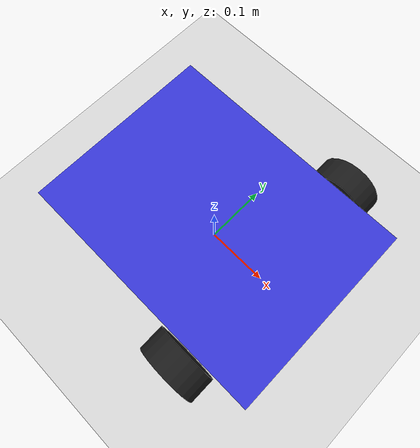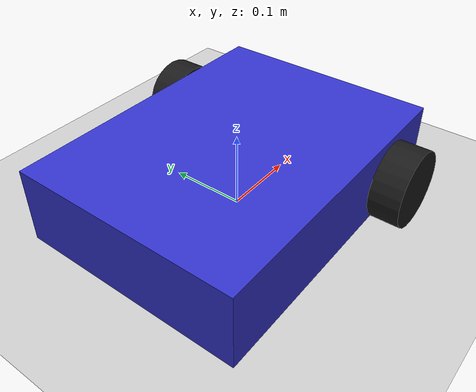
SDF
<?xml version="1.0" ?>
<sdf version="1.8">
  <world name="diff_drive_world">
    <!-- 물리 설정 -->
    <physics name="1ms" type="ode">
      <max_step_size>0.001</max_step_size>
      <real_time_factor>1.0</real_time_factor>
      <real_time_update_rate>1000</real_time_update_rate>
    </physics>

    <!-- 기본 플러그인 -->
    <plugin
      filename="libignition-gazebo-physics-system.so"
      name="ignition::gazebo::systems::Physics">
    </plugin>
    <plugin
      filename="libignition-gazebo-user-commands-system.so"
      name="ignition::gazebo::systems::UserCommands">
    </plugin>
    <plugin
      filename="libignition-gazebo-scene-broadcaster-system.so"
      name="ignition::gazebo::systems::SceneBroadcaster">
    </plugin>

    <!-- 키보드로 로봇 이동하기 위한 TriggeredPublisher 플러그인 -->
    <!-- 전진 (위 화살표) -->
    <plugin filename="libignition-gazebo-triggered-publisher-system.so"
            name="ignition::gazebo::systems::TriggeredPublisher">
        <input type="ignition.msgs.Int32" topic="/keyboard/keypress">
            <match field="data">16777235</match>
        </input>
        <output type="ignition.msgs.Twist" topic="/cmd_vel">
            linear: {x: 0.5}, angular: {z: 0.0}
        </output>
    </plugin>

    <!-- 후진 (아래 화살표) -->
    <plugin filename="libignition-gazebo-triggered-publisher-system.so"
            name="ignition::gazebo::systems::TriggeredPublisher">
        <input type="ignition.msgs.Int32" topic="/keyboard/keypress">
            <match field="data">16777237</match>
        </input>
        <output type="ignition.msgs.Twist" topic="/cmd_vel">
            linear: {x: -0.5}, angular: {z: 0.0}
        </output>
    </plugin>

    <!-- 좌회전 (왼쪽 화살표) -->
    <plugin filename="libignition-gazebo-triggered-publisher-system.so"
            name="ignition::gazebo::systems::TriggeredPublisher">
        <input type="ignition.msgs.Int32" topic="/keyboard/keypress">
            <match field="data">16777234</match>
        </input>
        <output type="ignition.msgs.Twist" topic="/cmd_vel">
            linear: {x: 0.0}, angular: {z: 0.5}
        </output>
    </plugin>

    <!-- 우회전 (오른쪽 화살표) -->
    <plugin filename="libignition-gazebo-triggered-publisher-system.so"
            name="ignition::gazebo::systems::TriggeredPublisher">
        <input type="ignition.msgs.Int32" topic="/keyboard/keypress">
            <match field="data">16777236</match>
        </input>
        <output type="ignition.msgs.Twist" topic="/cmd_vel">
            linear: {x: 0.0}, angular: {z: -0.5}
        </output>
    </plugin>

    <!-- 정지 (스페이스바) -->
    <plugin filename="libignition-gazebo-triggered-publisher-system.so"
            name="ignition::gazebo::systems::TriggeredPublisher">
        <input type="ignition.msgs.Int32" topic="/keyboard/keypress">
            <match field="data">32</match>
        </input>
        <output type="ignition.msgs.Twist" topic="/cmd_vel">
            linear: {x: 0.0}, angular: {z: 0.0}
        </output>
    </plugin>

    <!-- 조명 -->
    <light type="directional" name="sun">
      <cast_shadows>true</cast_shadows>
      <pose>0 0 10 0 0 0</pose>
      <diffuse>0.8 0.8 0.8 1</diffuse>
      <specular>0.2 0.2 0.2 1</specular>
      <direction>-0.5 0.1 -0.9</direction>
    </light>

    <!-- 지면 모델 포함 -->
    <include>
      <uri>model://chapter5/models/ground_plane</uri>
    </include>

    <!-- 로봇 모델 포함 -->
    <include>
      <uri>model://chapter5/models/diff_drive_robot</uri>
      <pose>0 0 0 0 0 0</pose>
    </include>

    <!-- GUI 설정 -->
    <gui fullscreen="0">
      <plugin filename="MinimalScene" name="3D View">
        <gz-gui>
          <title>3D View</title>
          <property type="bool" key="showTitleBar">false</property>
          <property type="string" key="state">docked</property>
        </gz-gui>
        <engine>ogre2</engine>
        <scene>scene</scene>
        <ambient_light>0.4 0.4 0.4</ambient_light>
        <background_color>0.8 0.8 0.8</background_color>
        <camera_pose>-6 0 6 0 0.5 0</camera_pose>
        <camera_clip>
          <near>0.25</near>
          <far>25000</far>
        </camera_clip>
      </plugin>
      <plugin filename="GzSceneManager" name="Scene Manager">
        <gz-gui>
          <property key="resizable" type="bool">false</property>
          <property key="showTitleBar" type="bool">false</property>
        </gz-gui>
      </plugin>
      <plugin filename="KeyPublisher" name="Key Publisher">
        <gz-gui>
          <anchors target="GzSceneManager">
            <line own="right" target="right"/>
            <line own="top" target="top"/>
          </anchors>
          <property key="showTitleBar" type="bool">false</property>
        </gz-gui>
      </plugin>
      <!-- Teleop GUI 플러그인 추가 -->
      <plugin filename="Teleop" name="Teleop">
        <gz-gui>
          <property key="showTitleBar" type="bool">false</property>
          <property key="resizable" type="bool">true</property>
          <property key="width" type="double">400</property>
          <property key="height" type="double">400</property>
          <property key="state" type="string">docked</property>
        </gz-gui>
        <topic>/cmd_vel</topic>
        <max_linear>1.0</max_linear>
        <max_angular>0.5</max_angular>
      </plugin>
    </gui>
  </world>
</sdf>

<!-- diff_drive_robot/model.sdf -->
<sdf version="1.6">
  <model name="diff_drive_robot">
    <!-- 로봇 본체 -->
    <link name="chassis">
      <pose>0 0 0.05 0 0 0</pose>
      <inertial>
        <mass>5.0</mass>
        <inertia>
          <ixx>0.0417</ixx>
          <iyy>0.0417</iyy>
          <izz>0.0833</izz>
          <ixy>0</ixy>
          <ixz>0</ixz>
          <iyz>0</iyz>
        </inertia>
      </inertial>
      <collision name="collision">
        <geometry>
          <box>
            <size>0.4 0.3 0.1</size>
          </box>
        </geometry>
      </collision>
      <visual name="visual">
        <geometry>
          <box>
            <size>0.4 0.3 0.1</size>
          </box>
        </geometry>
        <material>
          <ambient>0.2 0.2 0.8 1</ambient>
          <diffuse>0.2 0.2 0.8 1</diffuse>
          <specular>0.1 0.1 0.1 1</specular>
        </material>
      </visual>
    </link>

    <!-- 좌측 바퀴 -->
    <link name="left_wheel">
      <pose>0.1 0.175 0.05 -1.5707 0 0</pose>
      <inertial>
        <mass>1.0</mass>
        <inertia>
          <ixx>0.0029</ixx>
          <iyy>0.0029</iyy>
          <izz>0.0052</izz>
          <ixy>0</ixy>
          <ixz>0</ixz>
          <iyz>0</iyz>
        </inertia>
      </inertial>
      <collision name="collision">
        <geometry>
          <cylinder>
            <radius>0.05</radius>
            <length>0.04</length>
          </cylinder>
        </geometry>
      </collision>
      <visual name="visual">
        <geometry>
          <cylinder>
            <radius>0.05</radius>
            <length>0.04</length>
          </cylinder>
        </geometry>
        <material>
          <ambient>0.1 0.1 0.1 1</ambient>
          <diffuse>0.1 0.1 0.1 1</diffuse>
          <specular>0.1 0.1 0.1 1</specular>
        </material>
      </visual>
    </link>

    <!-- 우측 바퀴 -->
    <link name="right_wheel">
      <pose>0.1 -0.175 0.05 -1.5707 0 0</pose>
      <inertial>
        <mass>1.0</mass>
        <inertia>
          <ixx>0.0029</ixx>
          <iyy>0.0029</iyy>
          <izz>0.0052</izz>
          <ixy>0</ixy>
          <ixz>0</ixz>
          <iyz>0</iyz>
        </inertia>
      </inertial>
      <collision name="collision">
        <geometry>
          <cylinder>
            <radius>0.05</radius>
            <length>0.04</length>
          </cylinder>
        </geometry>
      </collision>
      <visual name="visual">
        <geometry>
          <cylinder>
            <radius>0.05</radius>
            <length>0.04</length>
          </cylinder>
        </geometry>
        <material>
          <ambient>0.1 0.1 0.1 1</ambient>
          <diffuse>0.1 0.1 0.1 1</diffuse>
          <specular>0.1 0.1 0.1 1</specular>
        </material>
      </visual>
    </link>

    <!-- 캐스터 휠 -->
    <link name="caster">
      <pose>-0.15 0 0.025 0 0 0</pose>
      <inertial>
        <mass>0.5</mass>
        <inertia>
          <ixx>0.0001</ixx>
          <iyy>0.0001</iyy>
          <izz>0.0001</izz>
          <ixy>0</ixy>
          <ixz>0</ixz>
          <iyz>0</iyz>
        </inertia>
      </inertial>
      <collision name="collision">
        <geometry>
          <sphere>
            <radius>0.025</radius>
          </sphere>
        </geometry>
        <surface>
          <friction>
            <ode>
              <mu>0.1</mu>
              <mu2>0.1</mu2>
            </ode>
          </friction>
        </surface>
      </collision>
      <visual name="visual">
        <geometry>
          <sphere>
            <radius>0.025</radius>
          </sphere>
        </geometry>
        <material>
          <ambient>0.3 0.3 0.3 1</ambient>
          <diffuse>0.3 0.3 0.3 1</diffuse>
          <specular>0.1 0.1 0.1 1</specular>
        </material>
      </visual>
    </link>

    <!-- 좌측 바퀴 조인트 -->
    <joint name="left_wheel_joint" type="revolute">
      <parent>chassis</parent>
      <child>left_wheel</child>
      <axis>
        <xyz>0 0 1</xyz>
        <limit>
          <lower>-1e+16</lower>
          <upper>1e+16</upper>
        </limit>
      </axis>
    </joint>

    <!-- 우측 바퀴 조인트 -->
    <joint name="right_wheel_joint" type="revolute">
      <parent>chassis</parent>
      <child>right_wheel</child>
      <axis>
        <xyz>0 0 1</xyz>
        <limit>
          <lower>-1e+16</lower>
          <upper>1e+16</upper>
        </limit>
      </axis>
    </joint>

    <!-- 캐스터 볼 조인트 -->
    <joint name="caster_joint" type="ball">
      <parent>chassis</parent>
      <child>caster</child>
    </joint>

    <!-- 차동 구동 플러그인 -->
    <plugin
      filename="libignition-gazebo-diff-drive-system.so"
      name="ignition::gazebo::systems::DiffDrive">
      <left_joint>left_wheel_joint</left_joint>
      <right_joint>right_wheel_joint</right_joint>
      <wheel_separation>0.35</wheel_separation>
      <wheel_radius>0.05</wheel_radius>
      <odom_publish_frequency>10</odom_publish_frequency>
      <topic>cmd_vel</topic>
    </plugin>
  </model>
</sdf>
